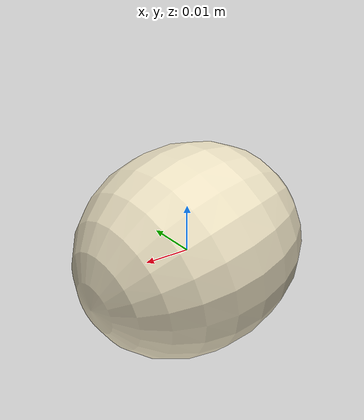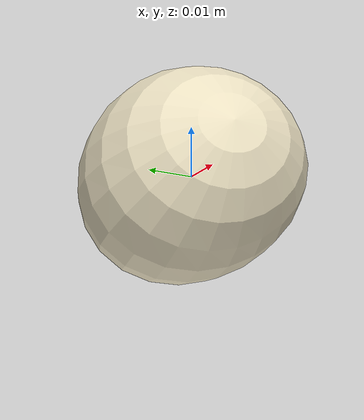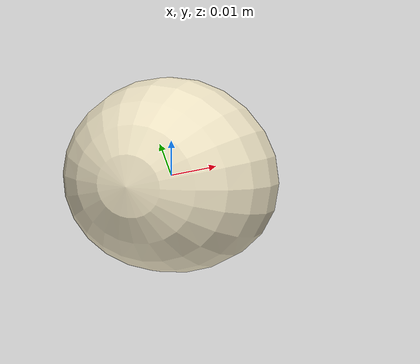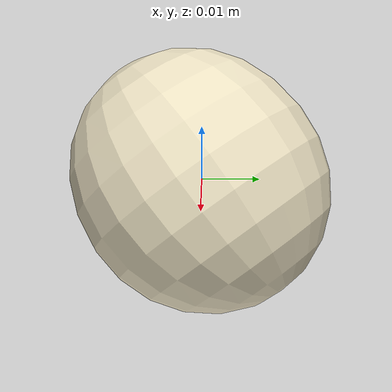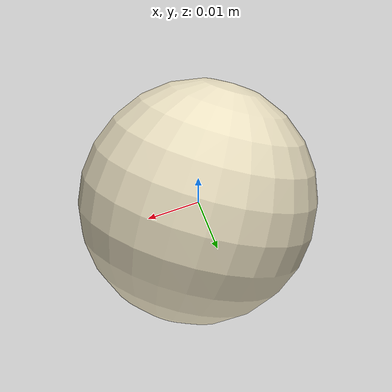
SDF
<?xml version="1.0"?>
<sdf version="1.7">
  <model name="cotton_pick_C_07">
    <static>false</static>
    <allow_auto_disable>false</allow_auto_disable>
    <link name="cotton_pick_C_07_link">
      <gravity>false</gravity>
      <self_collide>false</self_collide>
      <inertial>
        <mass>0.01200</mass>
        <inertia>
          <ixx>0.00000181</ixx>
          <iyy>0.00000181</iyy>
          <izz>0.00000181</izz>
          <ixy>0</ixy>
          <ixz>0</ixz>
          <iyz>0</iyz>
        </inertia>
      </inertial>
      <visual name="cotton_pick_C_07_visual">
        <geometry>
          <mesh>
            <uri>model://cotton_pick_C_07/meshes/cotton_pick_C_07.dae</uri>
          </mesh>
        </geometry>
      </visual>
      <collision name="cotton_pick_C_07_sphere_collision">
        <geometry>
          <sphere>
            <radius>0.01940</radius>
          </sphere>
        </geometry>
        <surface>
          <friction>
            <ode>
              <mu>1.6</mu>
              <mu2>1.6</mu2>
            </ode>
          </friction>
          <contact>
            <ode>
              <kp>8000</kp>
              <kd>80</kd>
            </ode>
          </contact>
        </surface>
      </collision>
    </link>
  </model>
</sdf>
